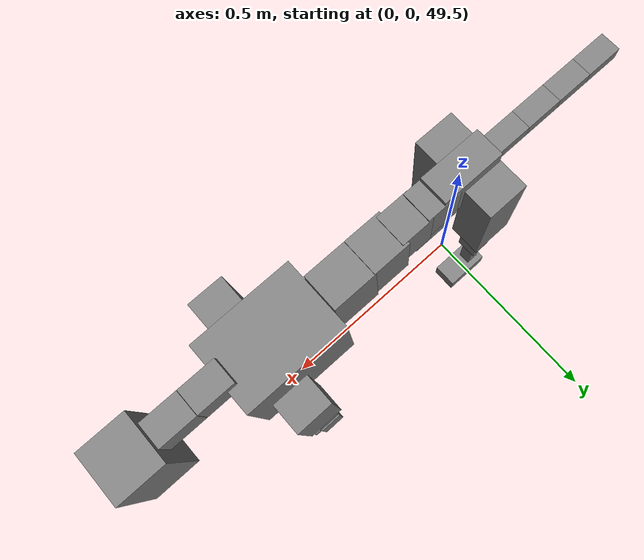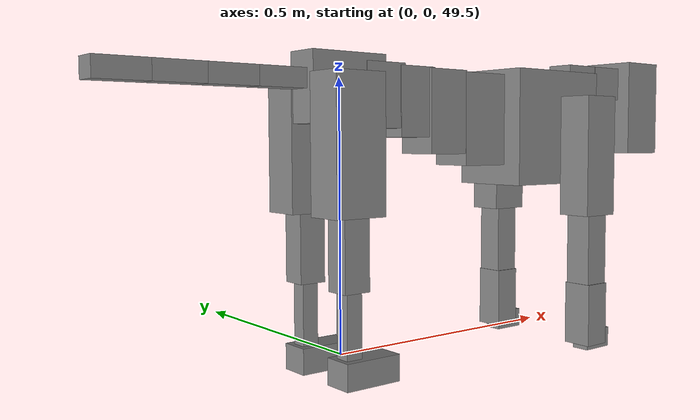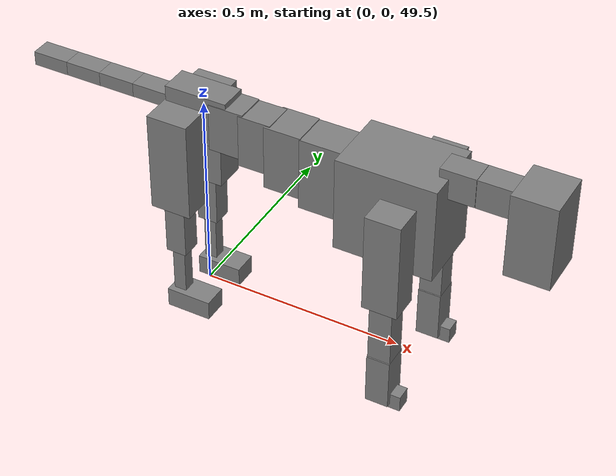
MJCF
<mujoco model="dog">

    <default>
        <joint armature="0.02" stiffness="1" damping="0.2" limited="true"/>
        <geom condim="3" friction="1 0.05 0.05" margin="0.01"/>
        <motor ctrllimited="true" ctrlrange="-1.0 1.0" forcelimited="true" gear="50"/>
    </default>

    <compiler inertiafromgeom="true" angle="radian"/>

    <option timestep="0.016" iterations="50" tolerance="1e-10" solver="Newton" jacobian="dense" cone="pyramidal"/>

    <size nconmax="20000" njmax="60000" nstack="5000000"/>
    <visual>
        <map force="0.1" zfar="30"/>
        <rgba haze="0.15 0.25 0.35 1"/>
        <quality shadowsize="2048"/>
        <global offwidth="800" offheight="800"/>
    </visual>

    <asset>
        <texture type="skybox" builtin="gradient" rgb1="0.3 0.5 0.7" rgb2="0 0 0" width="512" height="512"/>
        <texture name="texplane" type="2d" builtin="checker" rgb1=".2 .3 .4" rgb2=".1 0.15 0.2" width="512" height="512"
                 mark="cross" markrgb=".8 .8 .8"/>
        <texture name="texgeom" type="cube" builtin="flat" mark="cross" width="127" height="1278" rgb1="0.8 0.6 0.4"
                 rgb2="0.8 0.6 0.4" markrgb="1 1 1" random="0.01"/>

        <material name="matplane" reflectance="0.3" texture="texplane" texrepeat="1 1" texuniform="true"/>
        <material name="matgeom" texture="texgeom" texuniform="true" rgba="0.8 0.6 .4 1"/>
    </asset>

    <worldbody>
        <geom name="floor" pos="0 0 0" size="0 0 .25" type="plane" material="matplane" condim="3"/>

        <light directional="false" diffuse=".2 .2 .2" specular="0 0 0" pos="0 0 5" dir="0 0 -1" castshadow="false"/>
        <light mode="targetbodycom" target="torso" directional="false" diffuse=".8 .8 .8" specular="0.3 0.3 0.3"
               pos="0 0 4.0" dir="0 0 -1"/>

        <body name="root" pos="0 0 50">
            <freejoint name="root_1"/>
            <geom type="box" pos="0 0 -0.02" size="0.0774  0.0358  0.063" density="2030"/>

            <body name="spine1" pos="0.054 0 0">
                <joint name="spine1_y" axis="0 1 0" range="0 0.7" limited="true"/>
                <geom type="box" pos="0.02375 0 -0.03" size="0.04375  0.0375  0.05985" density="2030"/>

                <body name="spine2" pos="0.0612 0 0">
                    <joint name="spine2_y" axis="0 1 0" range="-0.15 0.15" limited="true"/>
                    <geom type="box" pos="0.03555  0  -0.04" size="0.04055  0.039  0.06615" density="2030"/>

                    <body name="spine3" pos="0.0730 0 0">
                        <joint name="spine3_y" axis="0 1 0" range="-0.15 0.15" limited="true"/>
                        <geom type="box" pos="0.03555  0  -0.057" size="0.04555  0.0445  0.081" density="2030"/>

                        <body name="spine4" pos="0.0780 0 0">
                            <joint name="spine4_y" axis="0 1 0" range="-0.15 0.15" limited="true"/>
                            <geom type="box" pos="0.05265  0  -0.07" size="0.05265  0.045  0.09135" density="2030"/>

                            <body name="torso" pos="0.1082 0 0">
                                <joint name="torso_y" axis="0 1 0" range="-0.15 0.15" limited="true"/>
                                <geom type="box" pos="0.11925  0  -0.085" size="0.11925  0.085  0.11745"
                                      density="2030"/>

                                <body name="neck1" pos="0.2160  0   0.0180">
                                    <joint name="neck1_y" axis="0 1 0" range="-1.2  -1" limited="true"/>
                                    <geom type="box" pos="0.0423  0  0" size="0.0423  0.03  0.036" density="2325"/>

                                    <body name="neck2" pos="0.0853  0  0">
                                        <joint name="neck2_y" axis="0 1 0" range="0.1  0" limited="true"/>
                                        <geom type="box" pos="0.0423  0  0" size="0.0423  0.03  0.036" density="2325"/>

                                        <body name="head" pos="0.0853  0  0">
                                            <joint name="head_y" axis="0 1 0" range="-0.3  -0.2" limited="true"/>
                                            <geom type="box" pos="0.0531  0  -0.055" size="0.0531  0.06  0.1044"
                                                  density="4030"/>

                                        </body>
                                    </body>
                                </body>

                                <body name="front_shoulder" pos="0.156  0   -0.0480">
                                    <joint name="front_shoulder_y" axis="0 1 0" range="-1 1.5" limited="true"/>
                                    <geom type="box" pos="0 0.13 -0.0956" size="0.0423  0.0361  0.1222" density="1158"/>
                                    <geom type="box" pos="0 -0.13 -0.0956" size="0.0423  0.0361  0.1222"
                                          density="1158"/>

                                    <body name="front_elbow" pos="0  0  -0.1912">
                                        <joint name="front_elbow_y" axis="0 1 0" range="-2 0" limited="true"/>
                                        <geom type="box" pos="0 0.13 -0.0913" size="0.0273  0.0279  0.0913"
                                              density="1081"/>
                                        <geom type="box" pos="0 -0.13 -0.0913" size="0.0273  0.0279  0.0913"
                                              density="1081"/>

                                        <body name="front_wrist" pos="0  0  -0.1825">
                                            <joint name="front_wrist_y" axis="0 1 0" range="-0.2 0" limited="true"/>
                                            <geom type="box" pos="0 0.13 -0.0503" size="0.0279  0.0310  0.0635"
                                                  density="1664"/>
                                            <geom type="box" pos="0 -0.13 -0.0503" size="0.0279  0.0310  0.0635"
                                                  density="1664"/>

                                            <body name="front_finger_end" pos="0  0  -0.1007">
                                                <joint name="front_finger_y" axis="0 1 0" range="-0.4 1"
                                                       limited="true"/>
                                                <geom type="box" pos="0.0186  0.13  -0.0050"
                                                      size="0.0341  0.0186  0.0200" density="1515"/>
                                                <geom type="box" pos="0.0186  -0.13  -0.0050"
                                                      size="0.0341  0.0186  0.0200" density="1515"/>

                                            </body>

                                        </body>
                                    </body>
                                </body>

                            </body>
                        </body>
                    </body>
                </body>
            </body>

            <body name="back_hip" pos="-0.03 0 -0.018">
                <joint name="back_hip_y" axis="0 1 0" range="-1.5 0.3" limited="true"/>
                <geom type="box" pos="0 0.07 -0.1013" size="0.0505  0.0396  0.1241" density="1154"/>
                <geom type="box" pos="0 -0.07 -0.1013" size="0.0505  0.0396  0.1241" density="1154"/>

                <body name="back_knee" pos="0  0  -0.2026">
                    <joint name="back_knee_y" axis="0 1 0" range="0 2.8" limited="true"/>
                    <geom type="box" pos="0 0.07 -0.0683" size="0.0257  0.0253  0.0838" density="1227"/>
                    <geom type="box" pos="0 -0.07 -0.0683" size="0.0257  0.0253  0.0838" density="1227"/>

                    <body name="back_ankle" pos="0  0  -0.1365">
                        <joint name="back_ankle_y" axis="0 1 0" range="-2.2 0" limited="true"/>
                        <geom type="box" pos="0 0.07 -0.0737" size="0.0156  0.0156  0.0849" density="1284"/>
                        <geom type="box" pos="0 -0.07 -0.0737" size="0.0156  0.0156  0.0849" density="1284"/>

                        <body name="back_toe_end" pos="0  0  -0.1473">
                            <joint name="back_toe_y" axis="0 1 0" range="-0.4 1" limited="true"/>
                            <geom type="box" pos="0.0306  0.07  -0.0094" size="0.0560  0.0306  0.0244" density="1515"/>
                            <geom type="box" pos="0.0306  -0.07  -0.0094" size="0.0560  0.0306  0.0244" density="1515"/>

                        </body>
                    </body>
                </body>
            </body>

            <body name="tail1" pos="-0.074 0 -0.006">
                <joint name="tail1_y" axis="0 1 0" range="-0.2 0.2" limited="true"/>
                <geom type="box" pos="-0.0536  0  0" size="0.045  0.025  0.0175" density="1587"/>

                <body name="tail2" pos="-0.09 0 0">
                    <joint name="tail2_y" axis="0 1 0" range="-0.2 0.2" limited="true"/>
                    <geom type="box" pos="-0.0536  0  0" size="0.045  0.025  0.0175" density="1587"/>

                    <body name="tail3" pos="-0.09 0 0">
                        <joint name="tail3_y" axis="0 1 0" range="-0.2 0.2" limited="true"/>
                        <geom type="box" pos="-0.0536  0  0" size="0.045  0.025  0.0175" density="1587"/>

                        <body name="tail4" pos="-0.09 0 0">
                            <joint name="tail4_y" axis="0 1 0" range="-0.2 0.2" limited="true"/>
                            <geom type="box" pos="-0.0536  0  0" size="0.045  0.025  0.0175" density="1587"/>

                        </body>
                    </body>
                </body>
            </body>
        </body>
    </worldbody>

    <actuator>
        <motor joint="spine1_y" forcerange="-150 150     "/>
        <motor joint="spine2_y" forcerange="-150 150     "/>
        <motor joint="spine3_y" forcerange="-150 150     "/>
        <motor joint="spine4_y" forcerange="-150 150     "/>
        <motor joint="torso_y" forcerange="-150 150     "/>
        <motor joint="neck1_y" forcerange="-100 100       "/>
        <motor joint="neck2_y" forcerange="-100 100       "/>
        <motor joint="head_y" forcerange="-150 150       "/>
        <motor joint="front_shoulder_y" forcerange="-168.97 171.88"/>
        <motor joint="front_elbow_y" forcerange="-162.03 140.61"/>
        <motor joint="front_wrist_y" forcerange="-99.65 148.27"/>
        <motor joint="front_finger_y" forcerange="-28.58 30.74"/>
        <motor joint="back_hip_y" forcerange="-371.56 356.84"/>
        <motor joint="back_knee_y" forcerange="-313.76 254.87"/>
        <motor joint="back_angle_y" forcerange="-81.41 68.02"/>
        <motor joint="back_toe_y" forcerange="-81.80 82.62"/>
        <motor joint="tail1_y" forcerange="-50 50     "/>
        <motor joint="tail2_y" forcerange="-50 50     "/>
        <motor joint="tail3_y" forcerange="-50 50     "/>
        <motor joint="tail4_y" forcerange="-50 50     "/>
    </actuator>
</mujoco>
